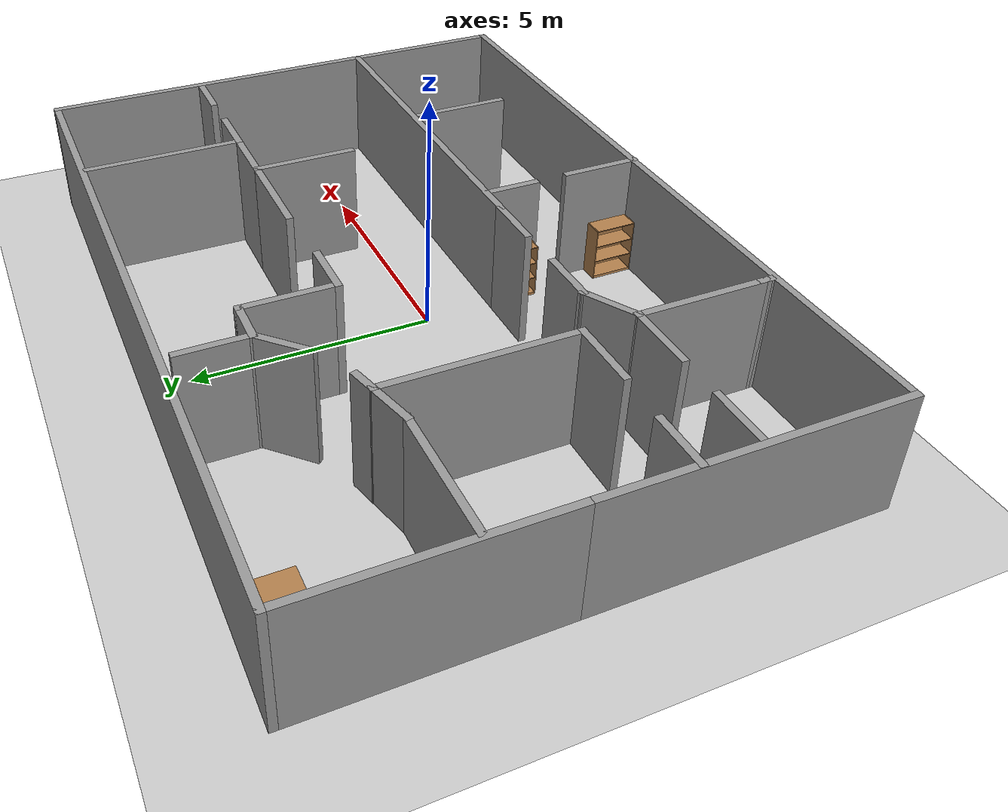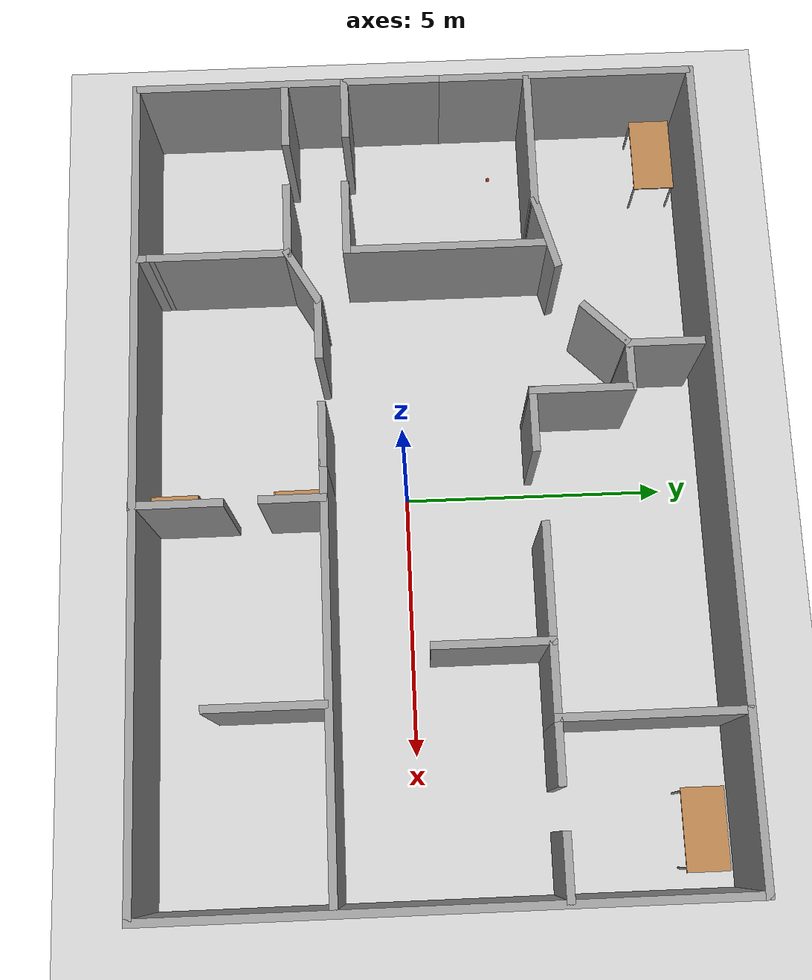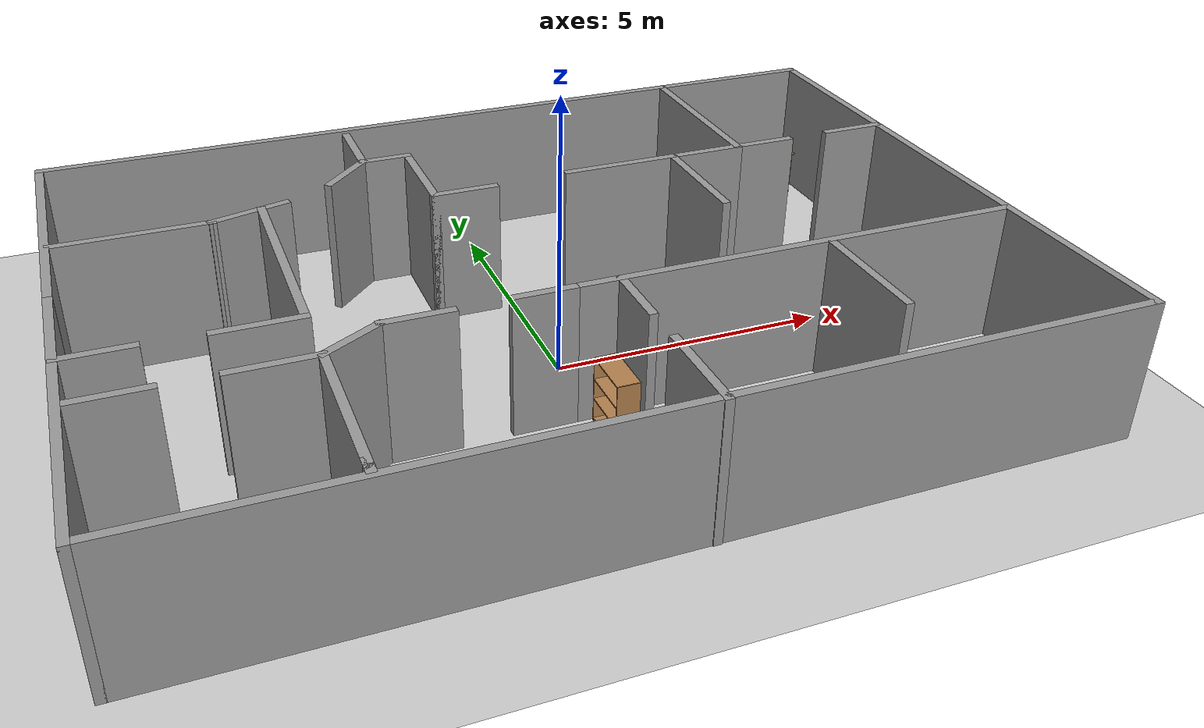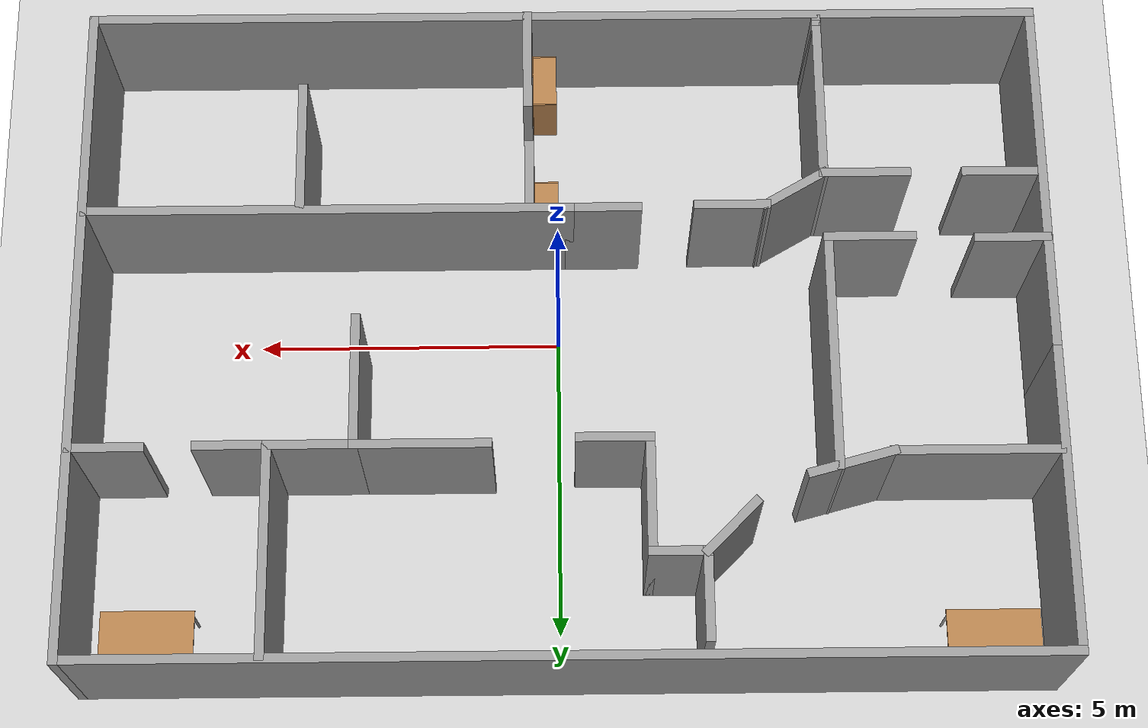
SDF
<sdf version="1.7">
 <world name="default">
  <light name="sun" type="directional">
   <pose>0 0 10 0 -0 0</pose>
   <diffuse>0.8 0.8 0.8 1</diffuse>
   <specular>0.2 0.2 0.2 1</specular>
   <attenuation>
    <range>1000</range>
    <constant>0.9</constant>
    <linear>0.01</linear>
    <quadratic>0.001</quadratic>
   </attenuation>
   <direction>-0.5 0.1 -0.9</direction>
   <spot><inner_angle>0</inner_angle><outer_angle>0</outer_angle><falloff>0</falloff></spot>
  </light>
  <model name="ground_plane">
   <static>1</static>
   <link name="link">
    <collision name="collision">
     <geometry><plane><normal>0 0 1</normal><size>100 100</size></plane></geometry>
     <surface><friction><ode><mu>100</mu><mu2>50</mu2></ode></friction></surface>
    </collision>
    <visual name="visual">
     <cast_shadows>0</cast_shadows>
     <geometry><plane><normal>0 0 1</normal><size>100 100</size></plane></geometry>
     <material>
      <script><uri>file://media/materials/scripts/gazebo.material</uri><name>Gazebo/Grey</name></script>
     </material>
    </visual>
   </link>
  </model>
  <gravity>0 0 -9.8</gravity>
  <magnetic_field>6e-06 2.3e-05 -4.2e-05</magnetic_field>
  <atmosphere type="adiabatic"/>
  <physics type="ode">
   <max_step_size>0.001</max_step_size>
   <real_time_factor>1</real_time_factor>
   <real_time_update_rate>1000</real_time_update_rate>
  </physics>
  <scene><ambient>0.4 0.4 0.4 1</ambient><background>0.7 0.7 0.7 1</background><shadows>1</shadows></scene>
  <spherical_coordinates>
   <surface_model>EARTH_WGS84</surface_model>
   <latitude_deg>0</latitude_deg>
   <longitude_deg>0</longitude_deg>
   <elevation>0</elevation>
   <heading_deg>0</heading_deg>
  </spherical_coordinates>
  <model name="Office">
   <pose>-0.10553 0.44931 0 0 -0 0</pose>
   <link name="Wall_101">
    <collision name="Wall_101_Collision">
     <geometry><box><size>2.25 0.15 2.5</size></box></geometry>
     <pose>0 0 1.25 0 -0 0</pose>
    </collision>
    <visual name="Wall_101_Visual">
     <pose>0 0 1.25 0 -0 0</pose>
     <geometry><box><size>2.25 0.15 2.5</size></box></geometry>
     <material>
      <script><uri>file://media/materials/scripts/gazebo.material</uri><name>Gazebo/Grey</name></script>
      <ambient>1 1 1 1</ambient>
     </material>
     <meta><layer>0</layer></meta>
    </visual>
    <pose>2.28237 2.04852 0 0 -0 3.14159</pose>
   </link>
   <link name="Wall_41">
    <collision name="Wall_41_Collision">
     <geometry><box><size>6 0.15 2.5</size></box></geometry>
     <pose>0 0 1.25 0 -0 0</pose>
    </collision>
    <visual name="Wall_41_Visual">
     <pose>0 0 1.25 0 -0 0</pose>
     <geometry><box><size>6 0.15 2.5</size></box></geometry>
     <material>
      <script><uri>file://media/materials/scripts/gazebo.material</uri><name>Gazebo/Grey</name></script>
      <ambient>1 1 1 1</ambient>
     </material>
     <meta><layer>0</layer></meta>
    </visual>
    <pose>-7.8 -2.49139 0 0 -0 -1.5708</pose>
   </link>
   <link name="Wall_42">
    <collision name="Wall_42_Collision">
     <geometry><box><size>15.75 0.15 2.5</size></box></geometry>
     <pose>0 0 1.25 0 -0 0</pose>
    </collision>
    <visual name="Wall_42_Visual">
     <pose>0 0 1.25 0 -0 0</pose>
     <geometry><box><size>15.75 0.15 2.5</size></box></geometry>
     <material>
      <script><uri>file://media/materials/scripts/gazebo.material</uri><name>Gazebo/Grey</name></script>
      <ambient>1 1 1 1</ambient>
     </material>
     <meta><layer>0</layer></meta>
    </visual>
    <pose>-0 -5.41639 0 0 -0 0</pose>
   </link>
   <link name="Wall_43">
    <collision name="Wall_43_Collision">
     <geometry><box><size>11 0.15 2.5</size></box></geometry>
     <pose>0 0 1.25 0 -0 0</pose>
    </collision>
    <visual name="Wall_43_Visual">
     <pose>0 0 1.25 0 -0 0</pose>
     <geometry><box><size>11 0.15 2.5</size></box></geometry>
     <material>
      <script><uri>file://media/materials/scripts/gazebo.material</uri><name>Gazebo/Grey</name></script>
      <ambient>1 1 1 1</ambient>
     </material>
     <meta><layer>0</layer></meta>
    </visual>
    <pose>7.8 0.008611 0 0 -0 1.5708</pose>
   </link>
   <link name="Wall_44">
    <collision name="Wall_44_Collision">
     <geometry><box><size>15.75 0.15 2.5</size></box></geometry>
     <pose>0 0 1.25 0 -0 0</pose>
    </collision>
    <visual name="Wall_44_Visual">
     <pose>0 0 1.25 0 -0 0</pose>
     <geometry><box><size>15.75 0.15 2.5</size></box></geometry>
     <material>
      <script><uri>file://media/materials/scripts/gazebo.material</uri><name>Gazebo/Grey</name></script>
      <ambient>1 1 1 1</ambient>
     </material>
     <meta><layer>0</layer></meta>
    </visual>
    <pose>-0 5.43361 0 0 -0 3.14159</pose>
   </link>
   <link name="Wall_45">
    <collision name="Wall_45_Collision">
     <geometry><box><size>5 0.15 2.5</size></box></geometry>
     <pose>0 0 1.25 0 -0 0</pose>
    </collision>
    <visual name="Wall_45_Visual">
     <pose>0 0 1.25 0 -0 0</pose>
     <geometry><box><size>5 0.15 2.5</size></box></geometry>
     <material>
      <script><uri>file://media/materials/scripts/gazebo.material</uri><name>Gazebo/Grey</name></script>
      <ambient>1 1 1 1</ambient>
     </material>
     <meta><layer>0</layer></meta>
    </visual>
    <pose>-7.8 3.00861 0 0 -0 -1.5708</pose>
   </link>
   <link name="Wall_47">
    <collision name="Wall_47_Collision">
     <geometry><box><size>2.75 0.15 2.5</size></box></geometry>
     <pose>0 0 1.25 0 -0 0</pose>
    </collision>
    <visual name="Wall_47_Visual">
     <pose>0 0 1.25 0 -0 0</pose>
     <geometry><box><size>2.75 0.15 2.5</size></box></geometry>
     <material>
      <script><uri>file://media/materials/scripts/gazebo.material</uri><name>Gazebo/Grey</name></script>
      <ambient>1 1 1 1</ambient>
     </material>
     <meta><layer>0</layer></meta>
    </visual>
    <pose>-6.42964 2.22773 0 0 -0 0</pose>
   </link>
   <link name="Wall_48">
    <collision name="Wall_48_Collision">
     <geometry><box><size>1.5 0.15 2.5</size></box></geometry>
     <pose>0 0 1.25 0 -0 0</pose>
    </collision>
    <visual name="Wall_48_Visual">
     <pose>0 0 1.25 0 -0 0</pose>
     <geometry><box><size>1.5 0.15 2.5</size></box></geometry>
     <material>
      <script><uri>file://media/materials/scripts/gazebo.material</uri><name>Gazebo/Grey</name></script>
      <ambient>1 1 1 1</ambient>
     </material>
     <meta><layer>0</layer></meta>
    </visual>
    <pose>-4.47764 2.40243 0 0 -0 0.261799</pose>
   </link>
   <link name="Wall_50">
    <collision name="Wall_50_Collision">
     <geometry><box><size>1.25 0.15 2.5</size></box></geometry>
     <pose>0 0 1.25 0 -0 0</pose>
    </collision>
    <visual name="Wall_50_Visual">
     <pose>0 0 1.25 0 -0 0</pose>
     <geometry><box><size>1.25 0.15 2.5</size></box></geometry>
     <material>
      <script><uri>file://media/materials/scripts/gazebo.material</uri><name>Gazebo/Grey</name></script>
      <ambient>1 1 1 1</ambient>
     </material>
     <meta><layer>0</layer></meta>
    </visual>
    <pose>-2.55642 3.42575 0 0 -0 0.785398</pose>
   </link>
   <link name="Wall_51">
    <collision name="Wall_51_Collision">
     <geometry><box><size>1.5 0.15 2.5</size></box></geometry>
     <pose>0 0 1.25 0 -0 0</pose>
    </collision>
    <visual name="Wall_51_Visual">
     <pose>0 0 1.25 0 -0 0</pose>
     <geometry><box><size>1.5 0.15 2.5</size></box></geometry>
     <material>
      <script><uri>file://media/materials/scripts/gazebo.material</uri><name>Gazebo/Grey</name></script>
      <ambient>1 1 1 1</ambient>
     </material>
     <meta><layer>0</layer></meta>
    </visual>
    <pose>-2.16751 4.48966 0 0 -0 1.5708</pose>
   </link>
   <link name="Wall_53">
    <collision name="Wall_53_Collision">
     <geometry><box><size>1.25 0.15 2.5</size></box></geometry>
     <pose>0 0 1.25 0 -0 0</pose>
    </collision>
    <visual name="Wall_53_Visual">
     <pose>0 0 1.25 0 -0 0</pose>
     <geometry><box><size>1.25 0.15 2.5</size></box></geometry>
     <material>
      <script><uri>file://media/materials/scripts/gazebo.material</uri><name>Gazebo/Grey</name></script>
      <ambient>1 1 1 1</ambient>
     </material>
     <meta><layer>0</layer></meta>
    </visual>
    <pose>-7.10928 -2.52141 0 0 -0 0</pose>
   </link>
   <link name="Wall_55">
    <collision name="Wall_55_Collision">
     <geometry><box><size>1.5 0.15 2.5</size></box></geometry>
     <pose>0 0 1.25 0 -0 0</pose>
    </collision>
    <visual name="Wall_55_Visual">
     <pose>0 0 1.25 0 -0 0</pose>
     <geometry><box><size>1.5 0.15 2.5</size></box></geometry>
     <material>
      <script><uri>file://media/materials/scripts/gazebo.material</uri><name>Gazebo/Grey</name></script>
      <ambient>1 1 1 1</ambient>
     </material>
     <meta><layer>0</layer></meta>
    </visual>
    <pose>-4.90874 -2.52141 0 0 -0 0</pose>
   </link>
   <link name="Wall_56">
    <collision name="Wall_56_Collision">
     <geometry><box><size>2.75 0.15 2.5</size></box></geometry>
     <pose>0 0 1.25 0 -0 0</pose>
    </collision>
    <visual name="Wall_56_Visual">
     <pose>0 0 1.25 0 -0 0</pose>
     <geometry><box><size>2.75 0.15 2.5</size></box></geometry>
     <material>
      <script><uri>file://media/materials/scripts/gazebo.material</uri><name>Gazebo/Grey</name></script>
      <ambient>1 1 1 1</ambient>
     </material>
     <meta><layer>0</layer></meta>
    </visual>
    <pose>-4.23374 -3.8214 0 0 -0 -1.5708</pose>
   </link>
   <link name="Wall_59">
    <collision name="Wall_59_Collision">
     <geometry><box><size>0.25 0.15 2.5</size></box></geometry>
     <pose>0 0 1.25 0 -0 0</pose>
    </collision>
    <visual name="Wall_59_Visual">
     <pose>0 0 1.25 0 -0 0</pose>
     <geometry><box><size>0.25 0.15 2.5</size></box></geometry>
     <material>
      <script><uri>file://media/materials/scripts/gazebo.material</uri><name>Gazebo/Grey</name></script>
      <ambient>1 1 1 1</ambient>
     </material>
     <meta><layer>0</layer></meta>
    </visual>
    <pose>-4.23374 -5.17141 0 0 -0 -1.5708</pose>
   </link>
   <link name="Wall_60">
    <collision name="Wall_60_Collision">
     <geometry><box><size>0.25 0.15 2.5</size></box></geometry>
     <pose>0 0 1.25 0 -0 0</pose>
    </collision>
    <visual name="Wall_60_Visual">
     <pose>0 0 1.25 0 -0 0</pose>
     <geometry><box><size>0.25 0.15 2.5</size></box></geometry>
     <material>
      <script><uri>file://media/materials/scripts/gazebo.material</uri><name>Gazebo/Grey</name></script>
      <ambient>1 1 1 1</ambient>
     </material>
     <meta><layer>0</layer></meta>
    </visual>
    <pose>-4.23374 -5.2714 0 0 -0 -1.5708</pose>
   </link>
   <link name="Wall_66">
    <collision name="Wall_66_Collision">
     <geometry><box><size>1.25 0.15 2.5</size></box></geometry>
     <pose>0 0 1.25 0 -0 0</pose>
    </collision>
    <visual name="Wall_66_Visual">
     <pose>0 0 1.25 0 -0 0</pose>
     <geometry><box><size>1.25 0.15 2.5</size></box></geometry>
     <material>
      <script><uri>file://media/materials/scripts/gazebo.material</uri><name>Gazebo/Grey</name></script>
      <ambient>1 1 1 1</ambient>
     </material>
     <meta><layer>0</layer></meta>
    </visual>
    <pose>-7.2372 -1.35675 0 0 -0 0</pose>
   </link>
   <link name="Wall_68">
    <collision name="Wall_68_Collision">
     <geometry><box><size>1.5 0.15 2.5</size></box></geometry>
     <pose>0 0 1.25 0 -0 0</pose>
    </collision>
    <visual name="Wall_68_Visual">
     <pose>0 0 1.25 0 -0 0</pose>
     <geometry><box><size>1.5 0.15 2.5</size></box></geometry>
     <material>
      <script><uri>file://media/materials/scripts/gazebo.material</uri><name>Gazebo/Grey</name></script>
      <ambient>1 1 1 1</ambient>
     </material>
     <meta><layer>0</layer></meta>
    </visual>
    <pose>-4.93424 -1.39651 0 0 -0 0</pose>
   </link>
   <link name="Wall_69">
    <collision name="Wall_69_Collision">
     <geometry><box><size>4 0.15 2.5</size></box></geometry>
     <pose>0 0 1.25 0 -0 0</pose>
    </collision>
    <visual name="Wall_69_Visual">
     <pose>0 0 1.25 0 -0 0</pose>
     <geometry><box><size>4 0.15 2.5</size></box></geometry>
     <material>
      <script><uri>file://media/materials/scripts/gazebo.material</uri><name>Gazebo/Grey</name></script>
      <ambient>1 1 1 1</ambient>
     </material>
     <meta><layer>0</layer></meta>
    </visual>
    <pose>-4.25924 0.528492 0 0 -0 1.5708</pose>
   </link>
   <link name="Wall_71">
    <collision name="Wall_71_Collision">
     <geometry><box><size>1.25 0.15 2.5</size></box></geometry>
     <pose>0 0 1.25 0 -0 0</pose>
    </collision>
    <visual name="Wall_71_Visual">
     <pose>0 0 1.25 0 -0 0</pose>
     <geometry><box><size>1.25 0.15 2.5</size></box></geometry>
     <material>
      <script><uri>file://media/materials/scripts/gazebo.material</uri><name>Gazebo/Grey</name></script>
      <ambient>1 1 1 1</ambient>
     </material>
     <meta><layer>0</layer></meta>
    </visual>
    <pose>-3.75742 -2.24641 0 0 -0 0.523599</pose>
   </link>
   <link name="Wall_72">
    <collision name="Wall_72_Collision">
     <geometry><box><size>1.25 0.15 2.5</size></box></geometry>
     <pose>0 0 1.25 0 -0 0</pose>
    </collision>
    <visual name="Wall_72_Visual">
     <pose>0 0 1.25 0 -0 0</pose>
     <geometry><box><size>1.25 0.15 2.5</size></box></geometry>
     <material>
      <script><uri>file://media/materials/scripts/gazebo.material</uri><name>Gazebo/Grey</name></script>
      <ambient>1 1 1 1</ambient>
     </material>
     <meta><layer>0</layer></meta>
    </visual>
    <pose>-2.73111 -1.97141 0 0 -0 0</pose>
   </link>
   <link name="Wall_74">
    <collision name="Wall_74_Collision">
     <geometry><box><size>1.25 0.15 2.5</size></box></geometry>
     <pose>0 0 1.25 0 -0 0</pose>
    </collision>
    <visual name="Wall_74_Visual">
     <pose>0 0 1.25 0 -0 0</pose>
     <geometry><box><size>1.25 0.15 2.5</size></box></geometry>
     <material>
      <script><uri>file://media/materials/scripts/gazebo.material</uri><name>Gazebo/Grey</name></script>
      <ambient>1 1 1 1</ambient>
     </material>
     <meta><layer>0</layer></meta>
    </visual>
    <pose>-0.64079 -1.94294 0 0 -0 0</pose>
   </link>
   <link name="Wall_75">
    <collision name="Wall_75_Collision">
     <geometry><box><size>8 0.15 2.5</size></box></geometry>
     <pose>0 0 1.25 0 -0 0</pose>
    </collision>
    <visual name="Wall_75_Visual">
     <pose>0 0 1.25 0 -0 0</pose>
     <geometry><box><size>8 0.15 2.5</size></box></geometry>
     <material>
      <script><uri>file://media/materials/scripts/gazebo.material</uri><name>Gazebo/Grey</name></script>
      <ambient>1 1 1 1</ambient>
     </material>
     <meta><layer>0</layer></meta>
    </visual>
    <pose>3.83421 -1.94294 0 0 -0 0</pose>
   </link>
   <link name="Wall_77">
    <collision name="Wall_77_Collision">
     <geometry><box><size>1.25 0.15 2.5</size></box></geometry>
     <pose>0 0 1.25 0 -0 0</pose>
    </collision>
    <visual name="Wall_77_Visual">
     <pose>0 0 1.25 0 -0 0</pose>
     <geometry><box><size>1.25 0.15 2.5</size></box></geometry>
     <material>
      <script><uri>file://media/materials/scripts/gazebo.material</uri><name>Gazebo/Grey</name></script>
      <ambient>1 1 1 1</ambient>
     </material>
     <meta><layer>0</layer></meta>
    </visual>
    <pose>0.559091 -2.51305 0 0 -0 -1.5708</pose>
   </link>
   <link name="Wall_81">
    <collision name="Wall_81_Collision">
     <geometry><box><size>1.75 0.15 2.5</size></box></geometry>
     <pose>0 0 1.25 0 -0 0</pose>
    </collision>
    <visual name="Wall_81_Visual">
     <pose>0 0 1.25 0 -0 0</pose>
     <geometry><box><size>1.75 0.15 2.5</size></box></geometry>
     <material>
      <script><uri>file://media/materials/scripts/gazebo.material</uri><name>Gazebo/Grey</name></script>
      <ambient>1 1 1 1</ambient>
     </material>
     <meta><layer>0</layer></meta>
    </visual>
    <pose>0.579205 -4.63361 0 0 -0 -1.5708</pose>
   </link>
   <link name="Wall_83">
    <collision name="Wall_83_Collision">
     <geometry><box><size>2.25 0.15 2.5</size></box></geometry>
     <pose>0 0 1.25 0 -0 0</pose>
    </collision>
    <visual name="Wall_83_Visual">
     <pose>0 0 1.25 0 -0 0</pose>
     <geometry><box><size>2.25 0.15 2.5</size></box></geometry>
     <material>
      <script><uri>file://media/materials/scripts/gazebo.material</uri><name>Gazebo/Grey</name></script>
      <ambient>1 1 1 1</ambient>
     </material>
     <meta><layer>0</layer></meta>
    </visual>
    <pose>4.2801 -3.07339 0 0 -0 -1.5708</pose>
   </link>
   <link name="Wall_85">
    <collision name="Wall_85_Collision">
     <geometry><box><size>3.5 0.15 2.5</size></box></geometry>
     <pose>0 0 1.25 0 -0 0</pose>
    </collision>
    <visual name="Wall_85_Visual">
     <pose>0 0 1.25 0 -0 0</pose>
     <geometry><box><size>3.5 0.15 2.5</size></box></geometry>
     <material>
      <script><uri>file://media/materials/scripts/gazebo.material</uri><name>Gazebo/Grey</name></script>
      <ambient>1 1 1 1</ambient>
     </material>
     <meta><layer>0</layer></meta>
    </visual>
    <pose>4.68237 3.72352 0 0 -0 -1.5708</pose>
   </link>
   <link name="Wall_86">
    <collision name="Wall_86_Collision">
     <geometry><box><size>1.25 0.15 2.5</size></box></geometry>
     <pose>0 0 1.25 0 -0 0</pose>
    </collision>
    <visual name="Wall_86_Visual">
     <pose>0 0 1.25 0 -0 0</pose>
     <geometry><box><size>1.25 0.15 2.5</size></box></geometry>
     <material>
      <script><uri>file://media/materials/scripts/gazebo.material</uri><name>Gazebo/Grey</name></script>
      <ambient>1 1 1 1</ambient>
     </material>
     <meta><layer>0</layer></meta>
    </visual>
    <pose>5.23237 2.04852 0 0 -0 0</pose>
   </link>
   <link name="Wall_89">
    <collision name="Wall_89_Collision">
     <geometry><box><size>1.25 0.15 2.5</size></box></geometry>
     <pose>0 0 1.25 0 -0 0</pose>
    </collision>
    <visual name="Wall_89_Visual">
     <pose>0 0 1.25 0 -0 0</pose>
     <geometry><box><size>1.25 0.15 2.5</size></box></geometry>
     <material>
      <script><uri>file://media/materials/scripts/gazebo.material</uri><name>Gazebo/Grey</name></script>
      <ambient>1 1 1 1</ambient>
     </material>
     <meta><layer>0</layer></meta>
    </visual>
    <pose>7.21933 2.06859 0 0 -0 0</pose>
   </link>
   <link name="Wall_91">
    <collision name="Wall_91_Collision">
     <geometry><box><size>1 0.15 2.5</size></box></geometry>
     <pose>0 0 1.25 0 -0 0</pose>
    </collision>
    <visual name="Wall_91_Visual">
     <pose>0 0 1.25 0 -0 0</pose>
     <geometry><box><size>1 0.15 2.5</size></box></geometry>
     <material>
      <script><uri>file://media/materials/scripts/gazebo.material</uri><name>Gazebo/Grey</name></script>
      <ambient>1 1 1 1</ambient>
     </material>
     <meta><layer>0</layer></meta>
    </visual>
    <pose>-1.74251 3.81466 0 0 -0 0</pose>
   </link>
   <link name="Wall_92">
    <collision name="Wall_92_Collision">
     <geometry><box><size>2 0.15 2.5</size></box></geometry>
     <pose>0 0 1.25 0 -0 0</pose>
    </collision>
    <visual name="Wall_92_Visual">
     <pose>0 0 1.25 0 -0 0</pose>
     <geometry><box><size>2 0.15 2.5</size></box></geometry>
     <material>
      <script><uri>file://media/materials/scripts/gazebo.material</uri><name>Gazebo/Grey</name></script>
      <ambient>1 1 1 1</ambient>
     </material>
     <meta><layer>0</layer></meta>
    </visual>
    <pose>-1.31751 2.88966 0 0 -0 -1.5708</pose>
   </link>
   <link name="Wall_93">
    <collision name="Wall_93_Collision">
     <geometry><box><size>1.25 0.15 2.5</size></box></geometry>
     <pose>0 0 1.25 0 -0 0</pose>
    </collision>
    <visual name="Wall_93_Visual">
     <pose>0 0 1.25 0 -0 0</pose>
     <geometry><box><size>1.25 0.15 2.5</size></box></geometry>
     <material>
      <script><uri>file://media/materials/scripts/gazebo.material</uri><name>Gazebo/Grey</name></script>
      <ambient>1 1 1 1</ambient>
     </material>
     <meta><layer>0</layer></meta>
    </visual>
    <pose>-0.767514 1.96466 0 0 -0 0</pose>
   </link>
   <link name="Wall_97">
    <collision name="Wall_97_Collision">
     <geometry><box><size>1.5 0.15 2.5</size></box></geometry>
     <pose>0 0 1.25 0 -0 0</pose>
    </collision>
    <visual name="Wall_97_Visual">
     <pose>0 0 1.25 0 -0 0</pose>
     <geometry><box><size>1.5 0.15 2.5</size></box></geometry>
     <material>
      <script><uri>file://media/materials/scripts/gazebo.material</uri><name>Gazebo/Grey</name></script>
      <ambient>1 1 1 1</ambient>
     </material>
     <meta><layer>0</layer></meta>
    </visual>
    <pose>4.00737 2.04852 0 0 -0 3.14159</pose>
   </link>
   <link name="Wall_98">
    <collision name="Wall_98_Collision">
     <geometry><box><size>2.25 0.15 2.5</size></box></geometry>
     <pose>0 0 1.25 0 -0 0</pose>
    </collision>
    <visual name="Wall_98_Visual">
     <pose>0 0 1.25 0 -0 0</pose>
     <geometry><box><size>2.25 0.15 2.5</size></box></geometry>
     <material>
      <script><uri>file://media/materials/scripts/gazebo.material</uri><name>Gazebo/Grey</name></script>
      <ambient>1 1 1 1</ambient>
     </material>
     <meta><layer>0</layer></meta>
    </visual>
    <pose>3.33237 0.998517 0 0 -0 -1.5708</pose>
   </link>
   <static>1</static>
  </model>
  <model name="table">
   <static>1</static>
   <link name="link">
    <collision name="surface">
     <pose>0 0 1 0 -0 0</pose>
     <geometry><box><size>1.5 0.8 0.03</size></box></geometry>
     <surface><friction><ode><mu>0.6</mu><mu2>0.6</mu2></ode></friction></surface>
    </collision>
    <visual name="visual1">
     <pose>0 0 1 0 -0 0</pose>
     <geometry><box><size>1.5 0.8 0.03</size></box></geometry>
     <material>
      <script><uri>file://media/materials/scripts/gazebo.material</uri><name>Gazebo/Wood</name></script>
     </material>
    </visual>
    <collision name="front_left_leg">
     <pose>0.68 0.38 0.5 0 -0 0</pose>
     <geometry><cylinder><radius>0.02</radius><length>1</length></cylinder></geometry>
    </collision>
    <visual name="front_left_leg">
     <pose>0.68 0.38 0.5 0 -0 0</pose>
     <geometry><cylinder><radius>0.02</radius><length>1</length></cylinder></geometry>
     <material>
      <script><uri>file://media/materials/scripts/gazebo.material</uri><name>Gazebo/Grey</name></script>
     </material>
    </visual>
    <collision name="front_right_leg">
     <pose>0.68 -0.38 0.5 0 -0 0</pose>
     <geometry><cylinder><radius>0.02</radius><length>1</length></cylinder></geometry>
    </collision>
    <visual name="front_right_leg">
     <pose>0.68 -0.38 0.5 0 -0 0</pose>
     <geometry><cylinder><radius>0.02</radius><length>1</length></cylinder></geometry>
     <material>
      <script><uri>file://media/materials/scripts/gazebo.material</uri><name>Gazebo/Grey</name></script>
     </material>
    </visual>
    <collision name="back_right_leg">
     <pose>-0.68 -0.38 0.5 0 -0 0</pose>
     <geometry><cylinder><radius>0.02</radius><length>1</length></cylinder></geometry>
    </collision>
    <visual name="back_right_leg">
     <pose>-0.68 -0.38 0.5 0 -0 0</pose>
     <geometry><cylinder><radius>0.02</radius><length>1</length></cylinder></geometry>
     <material>
      <script><uri>file://media/materials/scripts/gazebo.material</uri><name>Gazebo/Grey</name></script>
     </material>
    </visual>
    <collision name="back_left_leg">
     <pose>-0.68 0.38 0.5 0 -0 0</pose>
     <geometry><cylinder><radius>0.02</radius><length>1</length></cylinder></geometry>
    </collision>
    <visual name="back_left_leg">
     <pose>-0.68 0.38 0.5 0 -0 0</pose>
     <geometry><cylinder><radius>0.02</radius><length>1</length></cylinder></geometry>
     <material>
      <script><uri>file://media/materials/scripts/gazebo.material</uri><name>Gazebo/Grey</name></script>
     </material>
    </visual>
   </link>
   <pose>6.55499 5.17 0 0 -0 0</pose>
  </model>
  <model name="table_0">
   <static>1</static>
   <link name="link">
    <collision name="surface">
     <pose>0 0 1 0 -0 0</pose>
     <geometry><box><size>1.5 0.8 0.03</size></box></geometry>
     <surface><friction><ode><mu>0.6</mu><mu2>0.6</mu2></ode></friction></surface>
    </collision>
    <visual name="visual1">
     <pose>0 0 1 0 -0 0</pose>
     <geometry><box><size>1.5 0.8 0.03</size></box></geometry>
     <material>
      <script><uri>file://media/materials/scripts/gazebo.material</uri><name>Gazebo/Wood</name></script>
     </material>
    </visual>
    <collision name="front_left_leg">
     <pose>0.68 0.38 0.5 0 -0 0</pose>
     <geometry><cylinder><radius>0.02</radius><length>1</length></cylinder></geometry>
    </collision>
    <visual name="front_left_leg">
     <pose>0.68 0.38 0.5 0 -0 0</pose>
     <geometry><cylinder><radius>0.02</radius><length>1</length></cylinder></geometry>
     <material>
      <script><uri>file://media/materials/scripts/gazebo.material</uri><name>Gazebo/Grey</name></script>
     </material>
    </visual>
    <collision name="front_right_leg">
     <pose>0.68 -0.38 0.5 0 -0 0</pose>
     <geometry><cylinder><radius>0.02</radius><length>1</length></cylinder></geometry>
    </collision>
    <visual name="front_right_leg">
     <pose>0.68 -0.38 0.5 0 -0 0</pose>
     <geometry><cylinder><radius>0.02</radius><length>1</length></cylinder></geometry>
     <material>
      <script><uri>file://media/materials/scripts/gazebo.material</uri><name>Gazebo/Grey</name></script>
     </material>
    </visual>
    <collision name="back_right_leg">
     <pose>-0.68 -0.38 0.5 0 -0 0</pose>
     <geometry><cylinder><radius>0.02</radius><length>1</length></cylinder></geometry>
    </collision>
    <visual name="back_right_leg">
     <pose>-0.68 -0.38 0.5 0 -0 0</pose>
     <geometry><cylinder><radius>0.02</radius><length>1</length></cylinder></geometry>
     <material>
      <script><uri>file://media/materials/scripts/gazebo.material</uri><name>Gazebo/Grey</name></script>
     </material>
    </visual>
    <collision name="back_left_leg">
     <pose>-0.68 0.38 0.5 0 -0 0</pose>
     <geometry><cylinder><radius>0.02</radius><length>1</length></cylinder></geometry>
    </collision>
    <visual name="back_left_leg">
     <pose>-0.68 0.38 0.5 0 -0 0</pose>
     <geometry><cylinder><radius>0.02</radius><length>1</length></cylinder></geometry>
     <material>
      <script><uri>file://media/materials/scripts/gazebo.material</uri><name>Gazebo/Grey</name></script>
     </material>
    </visual>
   </link>
   <pose>-6.857 5.26524 0 0 -0 0</pose>
  </model>
  <model name="cricket_ball">
   <link name="link">
    <pose>0 0 0.0375 0 -0 0</pose>
    <inertial>
     <mass>0.1467</mass>
     <inertia>
      <ixx>8.25187e-05</ixx>
      <ixy>0</ixy>
      <ixz>0</ixz>
      <iyy>8.25187e-05</iyy>
      <iyz>0</iyz>
      <izz>8.25187e-05</izz>
     </inertia>
    </inertial>
    <collision name="collision">
     <geometry><sphere><radius>0.0375</radius></sphere></geometry>
     <surface>
      <contact>
       <poissons_ratio>0.347</poissons_ratio>
       <elastic_modulus>8.8e+09</elastic_modulus>
       <ode><kp>100000</kp><kd>100</kd><max_vel>100</max_vel><min_depth>0.001</min_depth></ode>
      </contact>
      <friction>
       <torsional>
        <coefficient>1</coefficient>
        <use_patch_radius>0</use_patch_radius>
        <surface_radius>0.01</surface_radius>
       </torsional>
      </friction>
     </surface>
    </collision>
    <visual name="visual">
     <geometry><sphere><radius>0.0375</radius></sphere></geometry>
     <material>
      <script><uri>file://media/materials/scripts/gazebo.material</uri><name>Gazebo/Red</name></script>
     </material>
    </visual>
    <velocity_decay><linear>0</linear><angular>0.005</angular></velocity_decay>
   </link>
   <pose>-6.91731 1.95652 -0.001014 0 -0 0</pose>
  </model>
  <model name="bookshelf">
   <static>1</static>
   <link name="link">
    <inertial><mass>1</mass></inertial>
    <collision name="back">
     <pose>0 0.005 0.6 0 -0 0</pose>
     <geometry><box><size>0.9 0.01 1.2</size></box></geometry>
    </collision>
    <visual name="visual1">
     <pose>0 0.005 0.6 0 -0 0</pose>
     <geometry><box><size>0.9 0.01 1.2</size></box></geometry>
     <material>
      <script><uri>file://media/materials/scripts/gazebo.material</uri><name>Gazebo/Wood</name></script>
     </material>
    </visual>
    <collision name="left_side">
     <pose>0.45 -0.195 0.6 0 -0 0</pose>
     <geometry><box><size>0.02 0.4 1.2</size></box></geometry>
    </collision>
    <visual name="visual2">
     <pose>0.45 -0.195 0.6 0 -0 0</pose>
     <geometry><box><size>0.02 0.4 1.2</size></box></geometry>
     <material>
      <script><uri>file://media/materials/scripts/gazebo.material</uri><name>Gazebo/Wood</name></script>
     </material>
    </visual>
    <collision name="right_side">
     <pose>-0.45 -0.195 0.6 0 -0 0</pose>
     <geometry><box><size>0.02 0.4 1.2</size></box></geometry>
    </collision>
    <visual name="visual3">
     <pose>-0.45 -0.195 0.6 0 -0 0</pose>
     <geometry><box><size>0.02 0.4 1.2</size></box></geometry>
     <material>
      <script><uri>file://media/materials/scripts/gazebo.material</uri><name>Gazebo/Wood</name></script>
     </material>
    </visual>
    <collision name="bottom">
     <pose>0 -0.195 0.03 0 -0 0</pose>
     <geometry><box><size>0.88 0.4 0.06</size></box></geometry>
    </collision>
    <visual name="visual4">
     <pose>0 -0.195 0.03 0 -0 0</pose>
     <geometry><box><size>0.88 0.4 0.06</size></box></geometry>
     <material>
      <script><uri>file://media/materials/scripts/gazebo.material</uri><name>Gazebo/Wood</name></script>
     </material>
    </visual>
    <collision name="top">
     <pose>0 -0.195 1.19 0 -0 0</pose>
     <geometry><box><size>0.88 0.4 0.02</size></box></geometry>
    </collision>
    <visual name="visual5">
     <pose>0 -0.195 1.19 0 -0 0</pose>
     <geometry><box><size>0.88 0.4 0.02</size></box></geometry>
     <material>
      <script><uri>file://media/materials/scripts/gazebo.material</uri><name>Gazebo/Wood</name></script>
     </material>
    </visual>
    <collision name="low_shelf">
     <pose>0 -0.195 0.43 0 -0 0</pose>
     <geometry><box><size>0.88 0.4 0.02</size></box></geometry>
    </collision>
    <visual name="visual6">
     <pose>0 -0.195 0.43 0 -0 0</pose>
     <geometry><box><size>0.88 0.4 0.02</size></box></geometry>
     <material>
      <script><uri>file://media/materials/scripts/gazebo.material</uri><name>Gazebo/Wood</name></script>
     </material>
    </visual>
    <collision name="high_shelf">
     <pose>0 -0.195 0.8 0 -0 0</pose>
     <geometry><box><size>0.88 0.4 0.02</size></box></geometry>
    </collision>
    <visual name="visual7">
     <pose>0 -0.195 0.8 0 -0 0</pose>
     <geometry><box><size>0.88 0.4 0.02</size></box></geometry>
     <material>
      <script><uri>file://media/materials/scripts/gazebo.material</uri><name>Gazebo/Wood</name></script>
     </material>
    </visual>
   </link>
   <pose>0.39258 -4.41685 0 0 0 -1.5635</pose>
  </model>
  <model name="bookshelf_clone">
   <static>1</static>
   <link name="link">
    <inertial><mass>1</mass></inertial>
    <collision name="back">
     <pose>0 0.005 0.6 0 -0 0</pose>
     <geometry><box><size>0.9 0.01 1.2</size></box></geometry>
    </collision>
    <visual name="visual1">
     <pose>0 0.005 0.6 0 -0 0</pose>
     <geometry><box><size>0.9 0.01 1.2</size></box></geometry>
     <material>
      <script><uri>file://media/materials/scripts/gazebo.material</uri><name>Gazebo/Wood</name></script>
     </material>
    </visual>
    <collision name="left_side">
     <pose>0.45 -0.195 0.6 0 -0 0</pose>
     <geometry><box><size>0.02 0.4 1.2</size></box></geometry>
    </collision>
    <visual name="visual2">
     <pose>0.45 -0.195 0.6 0 -0 0</pose>
     <geometry><box><size>0.02 0.4 1.2</size></box></geometry>
     <material>
      <script><uri>file://media/materials/scripts/gazebo.material</uri><name>Gazebo/Wood</name></script>
     </material>
    </visual>
    <collision name="right_side">
     <pose>-0.45 -0.195 0.6 0 -0 0</pose>
     <geometry><box><size>0.02 0.4 1.2</size></box></geometry>
    </collision>
    <visual name="visual3">
     <pose>-0.45 -0.195 0.6 0 -0 0</pose>
     <geometry><box><size>0.02 0.4 1.2</size></box></geometry>
     <material>
      <script><uri>file://media/materials/scripts/gazebo.material</uri><name>Gazebo/Wood</name></script>
     </material>
    </visual>
    <collision name="bottom">
     <pose>0 -0.195 0.03 0 -0 0</pose>
     <geometry><box><size>0.88 0.4 0.06</size></box></geometry>
    </collision>
    <visual name="visual4">
     <pose>0 -0.195 0.03 0 -0 0</pose>
     <geometry><box><size>0.88 0.4 0.06</size></box></geometry>
     <material>
      <script><uri>file://media/materials/scripts/gazebo.material</uri><name>Gazebo/Wood</name></script>
     </material>
    </visual>
    <collision name="top">
     <pose>0 -0.195 1.19 0 -0 0</pose>
     <geometry><box><size>0.88 0.4 0.02</size></box></geometry>
    </collision>
    <visual name="visual5">
     <pose>0 -0.195 1.19 0 -0 0</pose>
     <geometry><box><size>0.88 0.4 0.02</size></box></geometry>
     <material>
      <script><uri>file://media/materials/scripts/gazebo.material</uri><name>Gazebo/Wood</name></script>
     </material>
    </visual>
    <collision name="low_shelf">
     <pose>0 -0.195 0.43 0 -0 0</pose>
     <geometry><box><size>0.88 0.4 0.02</size></box></geometry>
    </collision>
    <visual name="visual6">
     <pose>0 -0.195 0.43 0 -0 0</pose>
     <geometry><box><size>0.88 0.4 0.02</size></box></geometry>
     <material>
      <script><uri>file://media/materials/scripts/gazebo.material</uri><name>Gazebo/Wood</name></script>
     </material>
    </visual>
    <collision name="high_shelf">
     <pose>0 -0.195 0.8 0 -0 0</pose>
     <geometry><box><size>0.88 0.4 0.02</size></box></geometry>
    </collision>
    <visual name="visual7">
     <pose>0 -0.195 0.8 0 -0 0</pose>
     <geometry><box><size>0.88 0.4 0.02</size></box></geometry>
     <material>
      <script><uri>file://media/materials/scripts/gazebo.material</uri><name>Gazebo/Wood</name></script>
     </material>
    </visual>
   </link>
   <pose>0.372782 -2.06084 0 0 0 -1.5635</pose>
  </model>
 </world>
</sdf>
